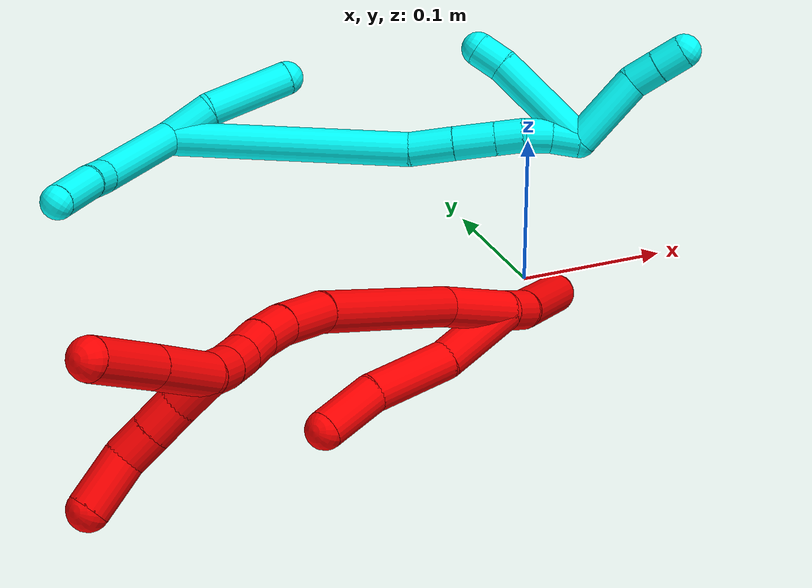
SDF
<sdf version="1.7">
 <world name="default">
  <model name="2">
   <static>0</static>
   <link name="2">
    <collision name="collision-cylinder-e_1_2_8">
     <pose>-0.016802 -0.004725 0.020211 0.229642 -0.680503 -0.081612</pose>
     <geometry><cylinder><radius>0.0125</radius><length>0.053408</length></cylinder></geometry>
     <surface>
      <friction><ode><mu>1.16</mu><mu2>1.16</mu2><slip1>0</slip1><slip2>0</slip2></ode></friction>
      <contact><ode><kp>1e+06</kp><kd>1</kd><max_vel>0</max_vel><min_depth>0.001</min_depth></ode></contact>
     </surface>
    </collision>
    <visual name="visual-cylinder-e_1_2_8">
     <pose>-0.016802 -0.004725 0.020211 0.229642 -0.680503 -0.081612</pose>
     <geometry><cylinder><radius>0.0125</radius><length>0.053408</length></cylinder></geometry>
     <material><ambient>1 0 0 1</ambient></material>
    </visual>
    <collision name="collision-cylinder-e_2_8_9">
     <pose>-0.048632 -0.008737 0.064012 -0.030161 -0.567038 0.008789</pose>
     <geometry><cylinder><radius>0.0125</radius><length>0.05596</length></cylinder></geometry>
     <surface>
      <friction><ode><mu>1.16</mu><mu2>1.16</mu2><slip1>0</slip1><slip2>0</slip2></ode></friction>
      <contact><ode><kp>1e+06</kp><kd>1</kd><max_vel>0</max_vel><min_depth>0.001</min_depth></ode></contact>
     </surface>
    </collision>
    <visual name="visual-cylinder-e_2_8_9">
     <pose>-0.048632 -0.008737 0.064012 -0.030161 -0.567038 0.008789</pose>
     <geometry><cylinder><radius>0.0125</radius><length>0.05596</length></cylinder></geometry>
     <material><ambient>1 0 0 1</ambient></material>
    </visual>
    <collision name="collision-cylinder-e_3_9_6">
     <pose>-0.074877 -0.011672 0.104145 0.216973 -0.584842 -0.065554</pose>
     <geometry><cylinder><radius>0.0125</radius><length>0.040633</length></cylinder></geometry>
     <surface>
      <friction><ode><mu>1.16</mu><mu2>1.16</mu2><slip1>0</slip1><slip2>0</slip2></ode></friction>
      <contact><ode><kp>1e+06</kp><kd>1</kd><max_vel>0</max_vel><min_depth>0.001</min_depth></ode></contact>
     </surface>
    </collision>
    <visual name="visual-cylinder-e_3_9_6">
     <pose>-0.074877 -0.011672 0.104145 0.216973 -0.584842 -0.065554</pose>
     <geometry><cylinder><radius>0.0125</radius><length>0.040633</length></cylinder></geometry>
     <material><ambient>1 0 0 1</ambient></material>
    </visual>
    <collision name="collision-cylinder-e_1_2_10">
     <pose>4.9e-05 -0.000212 -0.011595 3.12335 0.004239 0.45655</pose>
     <geometry><cylinder><radius>0.0125</radius><length>0.023193</length></cylinder></geometry>
     <surface>
      <friction><ode><mu>1.16</mu><mu2>1.16</mu2><slip1>0</slip1><slip2>0</slip2></ode></friction>
      <contact><ode><kp>1e+06</kp><kd>1</kd><max_vel>0</max_vel><min_depth>0.001</min_depth></ode></contact>
     </surface>
    </collision>
    <visual name="visual-cylinder-e_1_2_10">
     <pose>4.9e-05 -0.000212 -0.011595 3.12335 0.004239 0.45655</pose>
     <geometry><cylinder><radius>0.0125</radius><length>0.023193</length></cylinder></geometry>
     <material><ambient>1 0 0 1</ambient></material>
    </visual>
    <collision name="collision-cylinder-e_2_10_5">
     <pose>-0.003876 0.008106 -0.060422 -2.9164 -0.103662 0.860272</pose>
     <geometry><cylinder><radius>0.0125</radius><length>0.076807</length></cylinder></geometry>
     <surface>
      <friction><ode><mu>1.16</mu><mu2>1.16</mu2><slip1>0</slip1><slip2>0</slip2></ode></friction>
      <contact><ode><kp>1e+06</kp><kd>1</kd><max_vel>0</max_vel><min_depth>0.001</min_depth></ode></contact>
     </surface>
    </collision>
    <visual name="visual-cylinder-e_2_10_5">
     <pose>-0.003876 0.008106 -0.060422 -2.9164 -0.103662 0.860272</pose>
     <geometry><cylinder><radius>0.0125</radius><length>0.076807</length></cylinder></geometry>
     <material><ambient>1 0 0 1</ambient></material>
    </visual>
    <collision name="collision-cylinder-e_1_2_11">
     <pose>-0.004247 0.006381 0.025627 -0.244029 -0.159461 0.019595</pose>
     <geometry><cylinder><radius>0.0125</radius><length>0.053497</length></cylinder></geometry>
     <surface>
      <friction><ode><mu>1.16</mu><mu2>1.16</mu2><slip1>0</slip1><slip2>0</slip2></ode></friction>
      <contact><ode><kp>1e+06</kp><kd>1</kd><max_vel>0</max_vel><min_depth>0.001</min_depth></ode></contact>
     </surface>
    </collision>
    <visual name="visual-cylinder-e_1_2_11">
     <pose>-0.004247 0.006381 0.025627 -0.244029 -0.159461 0.019595</pose>
     <geometry><cylinder><radius>0.0125</radius><length>0.053497</length></cylinder></geometry>
     <material><ambient>1 0 0 1</ambient></material>
    </visual>
    <collision name="collision-cylinder-e_2_11_12">
     <pose>-0.01209 0.016583 0.111582 -0.063261 -0.059408 0.00188</pose>
     <geometry><cylinder><radius>0.0125</radius><length>0.121112</length></cylinder></geometry>
     <surface>
      <friction><ode><mu>1.16</mu><mu2>1.16</mu2><slip1>0</slip1><slip2>0</slip2></ode></friction>
      <contact><ode><kp>1e+06</kp><kd>1</kd><max_vel>0</max_vel><min_depth>0.001</min_depth></ode></contact>
     </surface>
    </collision>
    <visual name="visual-cylinder-e_2_11_12">
     <pose>-0.01209 0.016583 0.111582 -0.063261 -0.059408 0.00188</pose>
     <geometry><cylinder><radius>0.0125</radius><length>0.121112</length></cylinder></geometry>
     <material><ambient>1 0 0 1</ambient></material>
    </visual>
    <collision name="collision-cylinder-e_3_12_13">
     <pose>-0.018578 0.018919 0.190755 0.07866 -0.151855 -0.005987</pose>
     <geometry><cylinder><radius>0.0125</radius><length>0.038246</length></cylinder></geometry>
     <surface>
      <friction><ode><mu>1.16</mu><mu2>1.16</mu2><slip1>0</slip1><slip2>0</slip2></ode></friction>
      <contact><ode><kp>1e+06</kp><kd>1</kd><max_vel>0</max_vel><min_depth>0.001</min_depth></ode></contact>
     </surface>
    </collision>
    <visual name="visual-cylinder-e_3_12_13">
     <pose>-0.018578 0.018919 0.190755 0.07866 -0.151855 -0.005987</pose>
     <geometry><cylinder><radius>0.0125</radius><length>0.038246</length></cylinder></geometry>
     <material><ambient>1 0 0 1</ambient></material>
    </visual>
    <collision name="collision-cylinder-e_4_13_14">
     <pose>-0.02368 0.014688 0.221423 0.228147 -0.180038 -0.020682</pose>
     <geometry><cylinder><radius>0.0125</radius><length>0.024676</length></cylinder></geometry>
     <surface>
      <friction><ode><mu>1.16</mu><mu2>1.16</mu2><slip1>0</slip1><slip2>0</slip2></ode></friction>
      <contact><ode><kp>1e+06</kp><kd>1</kd><max_vel>0</max_vel><min_depth>0.001</min_depth></ode></contact>
     </surface>
    </collision>
    <visual name="visual-cylinder-e_4_13_14">
     <pose>-0.02368 0.014688 0.221423 0.228147 -0.180038 -0.020682</pose>
     <geometry><cylinder><radius>0.0125</radius><length>0.024676</length></cylinder></geometry>
     <material><ambient>1 0 0 1</ambient></material>
    </visual>
    <collision name="collision-cylinder-e_5_14_15">
     <pose>-0.027632 0.00823 0.243341 0.352475 -0.160596 -0.028659</pose>
     <geometry><cylinder><radius>0.0125</radius><length>0.02179</length></cylinder></geometry>
     <surface>
      <friction><ode><mu>1.16</mu><mu2>1.16</mu2><slip1>0</slip1><slip2>0</slip2></ode></friction>
      <contact><ode><kp>1e+06</kp><kd>1</kd><max_vel>0</max_vel><min_depth>0.001</min_depth></ode></contact>
     </surface>
    </collision>
    <visual name="visual-cylinder-e_5_14_15">
     <pose>-0.027632 0.00823 0.243341 0.352475 -0.160596 -0.028659</pose>
     <geometry><cylinder><radius>0.0125</radius><length>0.02179</length></cylinder></geometry>
     <material><ambient>1 0 0 1</ambient></material>
    </visual>
    <collision name="collision-cylinder-e_6_15_16">
     <pose>-0.029945 0.001494 0.26311 0.302842 -0.056324 -0.008597</pose>
     <geometry><cylinder><radius>0.0125</radius><length>0.020306</length></cylinder></geometry>
     <surface>
      <friction><ode><mu>1.16</mu><mu2>1.16</mu2><slip1>0</slip1><slip2>0</slip2></ode></friction>
      <contact><ode><kp>1e+06</kp><kd>1</kd><max_vel>0</max_vel><min_depth>0.001</min_depth></ode></contact>
     </surface>
    </collision>
    <visual name="visual-cylinder-e_6_15_16">
     <pose>-0.029945 0.001494 0.26311 0.302842 -0.056324 -0.008597</pose>
     <geometry><cylinder><radius>0.0125</radius><length>0.020306</length></cylinder></geometry>
     <material><ambient>1 0 0 1</ambient></material>
    </visual>
    <collision name="collision-cylinder-e_7_16_1">
     <pose>-0.030317 -0.003561 0.282765 0.200874 0.019613 0.001977</pose>
     <geometry><cylinder><radius>0.0125</radius><length>0.020373</length></cylinder></geometry>
     <surface>
      <friction><ode><mu>1.16</mu><mu2>1.16</mu2><slip1>0</slip1><slip2>0</slip2></ode></friction>
      <contact><ode><kp>1e+06</kp><kd>1</kd><max_vel>0</max_vel><min_depth>0.001</min_depth></ode></contact>
     </surface>
    </collision>
    <visual name="visual-cylinder-e_7_16_1">
     <pose>-0.030317 -0.003561 0.282765 0.200874 0.019613 0.001977</pose>
     <geometry><cylinder><radius>0.0125</radius><length>0.020373</length></cylinder></geometry>
     <material><ambient>1 0 0 1</ambient></material>
    </visual>
    <collision name="collision-cylinder-e_1_1_17">
     <pose>-0.028746 -0.002248 0.316438 -0.140233 0.057263 -0.004023</pose>
     <geometry><cylinder><radius>0.0125</radius><length>0.047934</length></cylinder></geometry>
     <surface>
      <friction><ode><mu>1.16</mu><mu2>1.16</mu2><slip1>0</slip1><slip2>0</slip2></ode></friction>
      <contact><ode><kp>1e+06</kp><kd>1</kd><max_vel>0</max_vel><min_depth>0.001</min_depth></ode></contact>
     </surface>
    </collision>
    <visual name="visual-cylinder-e_1_1_17">
     <pose>-0.028746 -0.002248 0.316438 -0.140233 0.057263 -0.004023</pose>
     <geometry><cylinder><radius>0.0125</radius><length>0.047934</length></cylinder></geometry>
     <material><ambient>1 0 0 1</ambient></material>
    </visual>
    <collision name="collision-cylinder-e_2_17_4">
     <pose>-0.025818 0.004266 0.365923 -0.122298 0.059794 -0.003662</pose>
     <geometry><cylinder><radius>0.0125</radius><length>0.052066</length></cylinder></geometry>
     <surface>
      <friction><ode><mu>1.16</mu><mu2>1.16</mu2><slip1>0</slip1><slip2>0</slip2></ode></friction>
      <contact><ode><kp>1e+06</kp><kd>1</kd><max_vel>0</max_vel><min_depth>0.001</min_depth></ode></contact>
     </surface>
    </collision>
    <visual name="visual-cylinder-e_2_17_4">
     <pose>-0.025818 0.004266 0.365923 -0.122298 0.059794 -0.003662</pose>
     <geometry><cylinder><radius>0.0125</radius><length>0.052066</length></cylinder></geometry>
     <material><ambient>1 0 0 1</ambient></material>
    </visual>
    <collision name="collision-cylinder-e_1_1_18">
     <pose>-0.041928 -0.00594 0.2944 0.206958 -1.42856 -0.179592</pose>
     <geometry><cylinder><radius>0.0125</radius><length>0.023863</length></cylinder></geometry>
     <surface>
      <friction><ode><mu>1.16</mu><mu2>1.16</mu2><slip1>0</slip1><slip2>0</slip2></ode></friction>
      <contact><ode><kp>1e+06</kp><kd>1</kd><max_vel>0</max_vel><min_depth>0.001</min_depth></ode></contact>
     </surface>
    </collision>
    <visual name="visual-cylinder-e_1_1_18">
     <pose>-0.041928 -0.00594 0.2944 0.206958 -1.42856 -0.179592</pose>
     <geometry><cylinder><radius>0.0125</radius><length>0.023863</length></cylinder></geometry>
     <material><ambient>1 0 0 1</ambient></material>
    </visual>
    <collision name="collision-cylinder-e_2_18_19">
     <pose>-0.064018 -0.007562 0.299152 0.390215 -1.25586 -0.284981</pose>
     <geometry><cylinder><radius>0.0125</radius><length>0.02162</length></cylinder></geometry>
     <surface>
      <friction><ode><mu>1.16</mu><mu2>1.16</mu2><slip1>0</slip1><slip2>0</slip2></ode></friction>
      <contact><ode><kp>1e+06</kp><kd>1</kd><max_vel>0</max_vel><min_depth>0.001</min_depth></ode></contact>
     </surface>
    </collision>
    <visual name="visual-cylinder-e_2_18_19">
     <pose>-0.064018 -0.007562 0.299152 0.390215 -1.25586 -0.284981</pose>
     <geometry><cylinder><radius>0.0125</radius><length>0.02162</length></cylinder></geometry>
     <material><ambient>1 0 0 1</ambient></material>
    </visual>
    <collision name="collision-cylinder-e_3_19_20">
     <pose>-0.083961 -0.010064 0.305485 0.362746 -1.22693 -0.256823</pose>
     <geometry><cylinder><radius>0.0125</radius><length>0.020531</length></cylinder></geometry>
     <surface>
      <friction><ode><mu>1.16</mu><mu2>1.16</mu2><slip1>0</slip1><slip2>0</slip2></ode></friction>
      <contact><ode><kp>1e+06</kp><kd>1</kd><max_vel>0</max_vel><min_depth>0.001</min_depth></ode></contact>
     </surface>
    </collision>
    <visual name="visual-cylinder-e_3_19_20">
     <pose>-0.083961 -0.010064 0.305485 0.362746 -1.22693 -0.256823</pose>
     <geometry><cylinder><radius>0.0125</radius><length>0.020531</length></cylinder></geometry>
     <material><ambient>1 0 0 1</ambient></material>
    </visual>
    <collision name="collision-cylinder-e_4_20_3">
     <pose>-0.10734 -0.017532 0.316577 0.671238 -0.939197 -0.350391</pose>
     <geometry><cylinder><radius>0.0125</radius><length>0.033986</length></cylinder></geometry>
     <surface>
      <friction><ode><mu>1.16</mu><mu2>1.16</mu2><slip1>0</slip1><slip2>0</slip2></ode></friction>
      <contact><ode><kp>1e+06</kp><kd>1</kd><max_vel>0</max_vel><min_depth>0.001</min_depth></ode></contact>
     </surface>
    </collision>
    <visual name="visual-cylinder-e_4_20_3">
     <pose>-0.10734 -0.017532 0.316577 0.671238 -0.939197 -0.350391</pose>
     <geometry><cylinder><radius>0.0125</radius><length>0.033986</length></cylinder></geometry>
     <material><ambient>1 0 0 1</ambient></material>
    </visual>
    <collision name="collision-sphere-3">
     <pose>-0.121055 -0.023772 0.324433 0 -0 0</pose>
     <geometry><sphere><radius>0.0125</radius></sphere></geometry>
     <surface>
      <friction><ode><mu>1.16</mu><mu2>1.16</mu2><slip1>0</slip1><slip2>0</slip2></ode></friction>
      <contact><ode><kp>1e+06</kp><kd>1</kd><max_vel>0</max_vel><min_depth>0.001</min_depth></ode></contact>
     </surface>
    </collision>
    <visual name="visual-sphere-3">
     <pose>-0.121055 -0.023772 0.324433 0 -0 0</pose>
     <geometry><sphere><radius>0.0125</radius></sphere></geometry>
     <material><ambient>1 0 0 1</ambient></material>
    </visual>
    <collision name="collision-sphere-20">
     <pose>-0.093626 -0.011292 0.30872 0 -0 0</pose>
     <geometry><sphere><radius>0.0125</radius></sphere></geometry>
     <surface>
      <friction><ode><mu>1.16</mu><mu2>1.16</mu2><slip1>0</slip1><slip2>0</slip2></ode></friction>
      <contact><ode><kp>1e+06</kp><kd>1</kd><max_vel>0</max_vel><min_depth>0.001</min_depth></ode></contact>
     </surface>
    </collision>
    <visual name="visual-sphere-20">
     <pose>-0.093626 -0.011292 0.30872 0 -0 0</pose>
     <geometry><sphere><radius>0.0125</radius></sphere></geometry>
     <material><ambient>1 0 0 1</ambient></material>
    </visual>
    <collision name="collision-sphere-19">
     <pose>-0.074296 -0.008836 0.302249 0 -0 0</pose>
     <geometry><sphere><radius>0.0125</radius></sphere></geometry>
     <surface>
      <friction><ode><mu>1.16</mu><mu2>1.16</mu2><slip1>0</slip1><slip2>0</slip2></ode></friction>
      <contact><ode><kp>1e+06</kp><kd>1</kd><max_vel>0</max_vel><min_depth>0.001</min_depth></ode></contact>
     </surface>
    </collision>
    <visual name="visual-sphere-19">
     <pose>-0.074296 -0.008836 0.302249 0 -0 0</pose>
     <geometry><sphere><radius>0.0125</radius></sphere></geometry>
     <material><ambient>1 0 0 1</ambient></material>
    </visual>
    <collision name="collision-sphere-5">
     <pose>-0.007849 0.016635 -0.097655 0 -0 0</pose>
     <geometry><sphere><radius>0.0125</radius></sphere></geometry>
     <surface>
      <friction><ode><mu>1.16</mu><mu2>1.16</mu2><slip1>0</slip1><slip2>0</slip2></ode></friction>
      <contact><ode><kp>1e+06</kp><kd>1</kd><max_vel>0</max_vel><min_depth>0.001</min_depth></ode></contact>
     </surface>
    </collision>
    <visual name="visual-sphere-5">
     <pose>-0.007849 0.016635 -0.097655 0 -0 0</pose>
     <geometry><sphere><radius>0.0125</radius></sphere></geometry>
     <material><ambient>1 0 0 1</ambient></material>
    </visual>
    <collision name="collision-sphere-10">
     <pose>9.8e-05 -0.000423 -0.023189 0 -0 0</pose>
     <geometry><sphere><radius>0.0125</radius></sphere></geometry>
     <surface>
      <friction><ode><mu>1.16</mu><mu2>1.16</mu2><slip1>0</slip1><slip2>0</slip2></ode></friction>
      <contact><ode><kp>1e+06</kp><kd>1</kd><max_vel>0</max_vel><min_depth>0.001</min_depth></ode></contact>
     </surface>
    </collision>
    <visual name="visual-sphere-10">
     <pose>9.8e-05 -0.000423 -0.023189 0 -0 0</pose>
     <geometry><sphere><radius>0.0125</radius></sphere></geometry>
     <material><ambient>1 0 0 1</ambient></material>
    </visual>
    <collision name="collision-sphere-6">
     <pose>-0.086093 -0.015319 0.120687 0 -0 0</pose>
     <geometry><sphere><radius>0.0125</radius></sphere></geometry>
     <surface>
      <friction><ode><mu>1.16</mu><mu2>1.16</mu2><slip1>0</slip1><slip2>0</slip2></ode></friction>
      <contact><ode><kp>1e+06</kp><kd>1</kd><max_vel>0</max_vel><min_depth>0.001</min_depth></ode></contact>
     </surface>
    </collision>
    <visual name="visual-sphere-6">
     <pose>-0.086093 -0.015319 0.120687 0 -0 0</pose>
     <geometry><sphere><radius>0.0125</radius></sphere></geometry>
     <material><ambient>1 0 0 1</ambient></material>
    </visual>
    <collision name="collision-sphere-9">
     <pose>-0.063661 -0.008026 0.087602 0 -0 0</pose>
     <geometry><sphere><radius>0.0125</radius></sphere></geometry>
     <surface>
      <friction><ode><mu>1.16</mu><mu2>1.16</mu2><slip1>0</slip1><slip2>0</slip2></ode></friction>
      <contact><ode><kp>1e+06</kp><kd>1</kd><max_vel>0</max_vel><min_depth>0.001</min_depth></ode></contact>
     </surface>
    </collision>
    <visual name="visual-sphere-9">
     <pose>-0.063661 -0.008026 0.087602 0 -0 0</pose>
     <geometry><sphere><radius>0.0125</radius></sphere></geometry>
     <material><ambient>1 0 0 1</ambient></material>
    </visual>
    <collision name="collision-sphere-2">
     <geometry><sphere><radius>0.0125</radius></sphere></geometry>
     <surface>
      <friction><ode><mu>1.16</mu><mu2>1.16</mu2><slip1>0</slip1><slip2>0</slip2></ode></friction>
      <contact><ode><kp>1e+06</kp><kd>1</kd><max_vel>0</max_vel><min_depth>0.001</min_depth></ode></contact>
     </surface>
    </collision>
    <visual name="visual-sphere-2">
     <geometry><sphere><radius>0.0125</radius></sphere></geometry>
     <material><ambient>1 0 0 1</ambient></material>
    </visual>
    <collision name="collision-sphere-8">
     <pose>-0.033603 -0.009449 0.040422 0 -0 0</pose>
     <geometry><sphere><radius>0.0125</radius></sphere></geometry>
     <surface>
      <friction><ode><mu>1.16</mu><mu2>1.16</mu2><slip1>0</slip1><slip2>0</slip2></ode></friction>
      <contact><ode><kp>1e+06</kp><kd>1</kd><max_vel>0</max_vel><min_depth>0.001</min_depth></ode></contact>
     </surface>
    </collision>
    <visual name="visual-sphere-8">
     <pose>-0.033603 -0.009449 0.040422 0 -0 0</pose>
     <geometry><sphere><radius>0.0125</radius></sphere></geometry>
     <material><ambient>1 0 0 1</ambient></material>
    </visual>
    <collision name="collision-sphere-11">
     <pose>-0.008495 0.012762 0.051253 0 -0 0</pose>
     <geometry><sphere><radius>0.0125</radius></sphere></geometry>
     <surface>
      <friction><ode><mu>1.16</mu><mu2>1.16</mu2><slip1>0</slip1><slip2>0</slip2></ode></friction>
      <contact><ode><kp>1e+06</kp><kd>1</kd><max_vel>0</max_vel><min_depth>0.001</min_depth></ode></contact>
     </surface>
    </collision>
    <visual name="visual-sphere-11">
     <pose>-0.008495 0.012762 0.051253 0 -0 0</pose>
     <geometry><sphere><radius>0.0125</radius></sphere></geometry>
     <material><ambient>1 0 0 1</ambient></material>
    </visual>
    <collision name="collision-sphere-12">
     <pose>-0.015685 0.020405 0.17191 0 -0 0</pose>
     <geometry><sphere><radius>0.0125</radius></sphere></geometry>
     <surface>
      <friction><ode><mu>1.16</mu><mu2>1.16</mu2><slip1>0</slip1><slip2>0</slip2></ode></friction>
      <contact><ode><kp>1e+06</kp><kd>1</kd><max_vel>0</max_vel><min_depth>0.001</min_depth></ode></contact>
     </surface>
    </collision>
    <visual name="visual-sphere-12">
     <pose>-0.015685 0.020405 0.17191 0 -0 0</pose>
     <geometry><sphere><radius>0.0125</radius></sphere></geometry>
     <material><ambient>1 0 0 1</ambient></material>
    </visual>
    <collision name="collision-sphere-13">
     <pose>-0.021471 0.017434 0.209599 0 -0 0</pose>
     <geometry><sphere><radius>0.0125</radius></sphere></geometry>
     <surface>
      <friction><ode><mu>1.16</mu><mu2>1.16</mu2><slip1>0</slip1><slip2>0</slip2></ode></friction>
      <contact><ode><kp>1e+06</kp><kd>1</kd><max_vel>0</max_vel><min_depth>0.001</min_depth></ode></contact>
     </surface>
    </collision>
    <visual name="visual-sphere-13">
     <pose>-0.021471 0.017434 0.209599 0 -0 0</pose>
     <geometry><sphere><radius>0.0125</radius></sphere></geometry>
     <material><ambient>1 0 0 1</ambient></material>
    </visual>
    <collision name="collision-sphere-14">
     <pose>-0.02589 0.011943 0.233247 0 -0 0</pose>
     <geometry><sphere><radius>0.0125</radius></sphere></geometry>
     <surface>
      <friction><ode><mu>1.16</mu><mu2>1.16</mu2><slip1>0</slip1><slip2>0</slip2></ode></friction>
      <contact><ode><kp>1e+06</kp><kd>1</kd><max_vel>0</max_vel><min_depth>0.001</min_depth></ode></contact>
     </surface>
    </collision>
    <visual name="visual-sphere-14">
     <pose>-0.02589 0.011943 0.233247 0 -0 0</pose>
     <geometry><sphere><radius>0.0125</radius></sphere></geometry>
     <material><ambient>1 0 0 1</ambient></material>
    </visual>
    <collision name="collision-sphere-15">
     <pose>-0.029374 0.004517 0.253434 0 -0 0</pose>
     <geometry><sphere><radius>0.0125</radius></sphere></geometry>
     <surface>
      <friction><ode><mu>1.16</mu><mu2>1.16</mu2><slip1>0</slip1><slip2>0</slip2></ode></friction>
      <contact><ode><kp>1e+06</kp><kd>1</kd><max_vel>0</max_vel><min_depth>0.001</min_depth></ode></contact>
     </surface>
    </collision>
    <visual name="visual-sphere-15">
     <pose>-0.029374 0.004517 0.253434 0 -0 0</pose>
     <geometry><sphere><radius>0.0125</radius></sphere></geometry>
     <material><ambient>1 0 0 1</ambient></material>
    </visual>
    <collision name="collision-sphere-16">
     <pose>-0.030517 -0.001529 0.272785 0 -0 0</pose>
     <geometry><sphere><radius>0.0125</radius></sphere></geometry>
     <surface>
      <friction><ode><mu>1.16</mu><mu2>1.16</mu2><slip1>0</slip1><slip2>0</slip2></ode></friction>
      <contact><ode><kp>1e+06</kp><kd>1</kd><max_vel>0</max_vel><min_depth>0.001</min_depth></ode></contact>
     </surface>
    </collision>
    <visual name="visual-sphere-16">
     <pose>-0.030517 -0.001529 0.272785 0 -0 0</pose>
     <geometry><sphere><radius>0.0125</radius></sphere></geometry>
     <material><ambient>1 0 0 1</ambient></material>
    </visual>
    <collision name="collision-sphere-1">
     <pose>-0.030117 -0.005593 0.292745 0 -0 0</pose>
     <geometry><sphere><radius>0.0125</radius></sphere></geometry>
     <surface>
      <friction><ode><mu>1.16</mu><mu2>1.16</mu2><slip1>0</slip1><slip2>0</slip2></ode></friction>
      <contact><ode><kp>1e+06</kp><kd>1</kd><max_vel>0</max_vel><min_depth>0.001</min_depth></ode></contact>
     </surface>
    </collision>
    <visual name="visual-sphere-1">
     <pose>-0.030117 -0.005593 0.292745 0 -0 0</pose>
     <geometry><sphere><radius>0.0125</radius></sphere></geometry>
     <material><ambient>1 0 0 1</ambient></material>
    </visual>
    <collision name="collision-sphere-18">
     <pose>-0.053739 -0.006288 0.296055 0 -0 0</pose>
     <geometry><sphere><radius>0.0125</radius></sphere></geometry>
     <surface>
      <friction><ode><mu>1.16</mu><mu2>1.16</mu2><slip1>0</slip1><slip2>0</slip2></ode></friction>
      <contact><ode><kp>1e+06</kp><kd>1</kd><max_vel>0</max_vel><min_depth>0.001</min_depth></ode></contact>
     </surface>
    </collision>
    <visual name="visual-sphere-18">
     <pose>-0.053739 -0.006288 0.296055 0 -0 0</pose>
     <geometry><sphere><radius>0.0125</radius></sphere></geometry>
     <material><ambient>1 0 0 1</ambient></material>
    </visual>
    <collision name="collision-sphere-17">
     <pose>-0.027374 0.001096 0.340131 0 -0 0</pose>
     <geometry><sphere><radius>0.0125</radius></sphere></geometry>
     <surface>
      <friction><ode><mu>1.16</mu><mu2>1.16</mu2><slip1>0</slip1><slip2>0</slip2></ode></friction>
      <contact><ode><kp>1e+06</kp><kd>1</kd><max_vel>0</max_vel><min_depth>0.001</min_depth></ode></contact>
     </surface>
    </collision>
    <visual name="visual-sphere-17">
     <pose>-0.027374 0.001096 0.340131 0 -0 0</pose>
     <geometry><sphere><radius>0.0125</radius></sphere></geometry>
     <material><ambient>1 0 0 1</ambient></material>
    </visual>
    <collision name="collision-sphere-4">
     <pose>-0.024263 0.007436 0.391715 0 -0 0</pose>
     <geometry><sphere><radius>0.0125</radius></sphere></geometry>
     <surface>
      <friction><ode><mu>1.16</mu><mu2>1.16</mu2><slip1>0</slip1><slip2>0</slip2></ode></friction>
      <contact><ode><kp>1e+06</kp><kd>1</kd><max_vel>0</max_vel><min_depth>0.001</min_depth></ode></contact>
     </surface>
    </collision>
    <visual name="visual-sphere-4">
     <pose>-0.024263 0.007436 0.391715 0 -0 0</pose>
     <geometry><sphere><radius>0.0125</radius></sphere></geometry>
     <material><ambient>1 0 0 1</ambient></material>
    </visual>
    <inertial>
     <pose>-0.029667 0.002642 0.15037 0 -0 0</pose>
     <mass>0.75</mass>
     <inertia>
      <ixx>0.000282</ixx>
      <ixy>0</ixy>
      <ixz>0</ixz>
      <iyy>0.000254</iyy>
      <iyz>0</iyz>
      <izz>6.4e-05</izz>
     </inertia>
    </inertial>
   </link>
   <pose>-0.064522 -0.103794 0.037457 0.99746 -0.865438 -0.541143</pose>
  </model>
  <model name="3">
   <static>0</static>
   <link name="3">
    <collision name="collision-cylinder-e_1_2_8">
     <pose>-0.024721 -0.034715 0.011019 1.26344 -0.596307 -0.442397</pose>
     <geometry><cylinder><radius>0.0125</radius><length>0.088039</length></cylinder></geometry>
     <surface>
      <friction><ode><mu>1.16</mu><mu2>1.16</mu2><slip1>0</slip1><slip2>0</slip2></ode></friction>
      <contact><ode><kp>1e+06</kp><kd>1</kd><max_vel>0</max_vel><min_depth>0.001</min_depth></ode></contact>
     </surface>
    </collision>
    <visual name="visual-cylinder-e_1_2_8">
     <pose>-0.024721 -0.034715 0.011019 1.26344 -0.596307 -0.442397</pose>
     <geometry><cylinder><radius>0.0125</radius><length>0.088039</length></cylinder></geometry>
     <material><ambient>0.003922 1 0.996078 1</ambient></material>
    </visual>
    <collision name="collision-cylinder-e_2_8_9">
     <pose>-0.053592 -0.078608 0.024461 1.31265 -0.412177 -0.319304</pose>
     <geometry><cylinder><radius>0.0125</radius><length>0.020718</length></cylinder></geometry>
     <surface>
      <friction><ode><mu>1.16</mu><mu2>1.16</mu2><slip1>0</slip1><slip2>0</slip2></ode></friction>
      <contact><ode><kp>1e+06</kp><kd>1</kd><max_vel>0</max_vel><min_depth>0.001</min_depth></ode></contact>
     </surface>
    </collision>
    <visual name="visual-cylinder-e_2_8_9">
     <pose>-0.053592 -0.078608 0.024461 1.31265 -0.412177 -0.319304</pose>
     <geometry><cylinder><radius>0.0125</radius><length>0.020718</length></cylinder></geometry>
     <material><ambient>0.003922 1 0.996078 1</ambient></material>
    </visual>
    <collision name="collision-cylinder-e_3_9_6">
     <pose>-0.06891 -0.10455 0.031294 1.31362 -0.572326 -0.446167</pose>
     <geometry><cylinder><radius>0.0125</radius><length>0.041243</length></cylinder></geometry>
     <surface>
      <friction><ode><mu>1.16</mu><mu2>1.16</mu2><slip1>0</slip1><slip2>0</slip2></ode></friction>
      <contact><ode><kp>1e+06</kp><kd>1</kd><max_vel>0</max_vel><min_depth>0.001</min_depth></ode></contact>
     </surface>
    </collision>
    <visual name="visual-cylinder-e_3_9_6">
     <pose>-0.06891 -0.10455 0.031294 1.31362 -0.572326 -0.446167</pose>
     <geometry><cylinder><radius>0.0125</radius><length>0.041243</length></cylinder></geometry>
     <material><ambient>0.003922 1 0.996078 1</ambient></material>
    </visual>
    <collision name="collision-cylinder-e_1_2_10">
     <pose>0.017068 0.001632 -0.00632 -2.88889 1.20552 -2.77653</pose>
     <geometry><cylinder><radius>0.0125</radius><length>0.036548</length></cylinder></geometry>
     <surface>
      <friction><ode><mu>1.16</mu><mu2>1.16</mu2><slip1>0</slip1><slip2>0</slip2></ode></friction>
      <contact><ode><kp>1e+06</kp><kd>1</kd><max_vel>0</max_vel><min_depth>0.001</min_depth></ode></contact>
     </surface>
    </collision>
    <visual name="visual-cylinder-e_1_2_10">
     <pose>0.017068 0.001632 -0.00632 -2.88889 1.20552 -2.77653</pose>
     <geometry><cylinder><radius>0.0125</radius><length>0.036548</length></cylinder></geometry>
     <material><ambient>0.003922 1 0.996078 1</ambient></material>
    </visual>
    <collision name="collision-cylinder-e_2_10_5">
     <pose>0.059891 0.011114 -0.029422 -2.70404 0.947208 -2.32296</pose>
     <geometry><cylinder><radius>0.0125</radius><length>0.063452</length></cylinder></geometry>
     <surface>
      <friction><ode><mu>1.16</mu><mu2>1.16</mu2><slip1>0</slip1><slip2>0</slip2></ode></friction>
      <contact><ode><kp>1e+06</kp><kd>1</kd><max_vel>0</max_vel><min_depth>0.001</min_depth></ode></contact>
     </surface>
    </collision>
    <visual name="visual-cylinder-e_2_10_5">
     <pose>0.059891 0.011114 -0.029422 -2.70404 0.947208 -2.32296</pose>
     <geometry><cylinder><radius>0.0125</radius><length>0.063452</length></cylinder></geometry>
     <material><ambient>0.003922 1 0.996078 1</ambient></material>
    </visual>
    <collision name="collision-cylinder-e_1_2_11">
     <pose>0.045441 -0.012595 -0.074277 2.97362 0.542746 2.55397</pose>
     <geometry><cylinder><radius>0.0125</radius><length>0.17596</length></cylinder></geometry>
     <surface>
      <friction><ode><mu>1.16</mu><mu2>1.16</mu2><slip1>0</slip1><slip2>0</slip2></ode></friction>
      <contact><ode><kp>1e+06</kp><kd>1</kd><max_vel>0</max_vel><min_depth>0.001</min_depth></ode></contact>
     </surface>
    </collision>
    <visual name="visual-cylinder-e_1_2_11">
     <pose>0.045441 -0.012595 -0.074277 2.97362 0.542746 2.55397</pose>
     <geometry><cylinder><radius>0.0125</radius><length>0.17596</length></cylinder></geometry>
     <material><ambient>0.003922 1 0.996078 1</ambient></material>
    </visual>
    <collision name="collision-cylinder-e_2_11_12">
     <pose>0.101495 -0.028 -0.160478 2.91021 0.713888 2.53741</pose>
     <geometry><cylinder><radius>0.0125</radius><length>0.032419</length></cylinder></geometry>
     <surface>
      <friction><ode><mu>1.16</mu><mu2>1.16</mu2><slip1>0</slip1><slip2>0</slip2></ode></friction>
      <contact><ode><kp>1e+06</kp><kd>1</kd><max_vel>0</max_vel><min_depth>0.001</min_depth></ode></contact>
     </surface>
    </collision>
    <visual name="visual-cylinder-e_2_11_12">
     <pose>0.101495 -0.028 -0.160478 2.91021 0.713888 2.53741</pose>
     <geometry><cylinder><radius>0.0125</radius><length>0.032419</length></cylinder></geometry>
     <material><ambient>0.003922 1 0.996078 1</ambient></material>
    </visual>
    <collision name="collision-cylinder-e_3_12_13">
     <pose>0.121914 -0.033046 -0.183728 2.94663 0.704129 2.62127</pose>
     <geometry><cylinder><radius>0.0125</radius><length>0.030292</length></cylinder></geometry>
     <surface>
      <friction><ode><mu>1.16</mu><mu2>1.16</mu2><slip1>0</slip1><slip2>0</slip2></ode></friction>
      <contact><ode><kp>1e+06</kp><kd>1</kd><max_vel>0</max_vel><min_depth>0.001</min_depth></ode></contact>
     </surface>
    </collision>
    <visual name="visual-cylinder-e_3_12_13">
     <pose>0.121914 -0.033046 -0.183728 2.94663 0.704129 2.62127</pose>
     <geometry><cylinder><radius>0.0125</radius><length>0.030292</length></cylinder></geometry>
     <material><ambient>0.003922 1 0.996078 1</ambient></material>
    </visual>
    <collision name="collision-cylinder-e_4_13_14">
     <pose>0.138268 -0.036785 -0.202596 2.94491 0.705346 2.6178</pose>
     <geometry><cylinder><radius>0.0125</radius><length>0.020203</length></cylinder></geometry>
     <surface>
      <friction><ode><mu>1.16</mu><mu2>1.16</mu2><slip1>0</slip1><slip2>0</slip2></ode></friction>
      <contact><ode><kp>1e+06</kp><kd>1</kd><max_vel>0</max_vel><min_depth>0.001</min_depth></ode></contact>
     </surface>
    </collision>
    <visual name="visual-cylinder-e_4_13_14">
     <pose>0.138268 -0.036785 -0.202596 2.94491 0.705346 2.6178</pose>
     <geometry><cylinder><radius>0.0125</radius><length>0.020203</length></cylinder></geometry>
     <material><ambient>0.003922 1 0.996078 1</ambient></material>
    </visual>
    <collision name="collision-cylinder-e_5_14_15">
     <pose>0.15027 -0.037502 -0.218587 -3.04879 0.571337 -2.82798</pose>
     <geometry><cylinder><radius>0.0125</radius><length>0.020172</length></cylinder></geometry>
     <surface>
      <friction><ode><mu>1.16</mu><mu2>1.16</mu2><slip1>0</slip1><slip2>0</slip2></ode></friction>
      <contact><ode><kp>1e+06</kp><kd>1</kd><max_vel>0</max_vel><min_depth>0.001</min_depth></ode></contact>
     </surface>
    </collision>
    <visual name="visual-cylinder-e_5_14_15">
     <pose>0.15027 -0.037502 -0.218587 -3.04879 0.571337 -2.82798</pose>
     <geometry><cylinder><radius>0.0125</radius><length>0.020172</length></cylinder></geometry>
     <material><ambient>0.003922 1 0.996078 1</ambient></material>
    </visual>
    <collision name="collision-cylinder-e_6_15_1">
     <pose>0.160174 -0.037276 -0.236503 3.08248 0.438609 2.87784</pose>
     <geometry><cylinder><radius>0.0125</radius><length>0.020954</length></cylinder></geometry>
     <surface>
      <friction><ode><mu>1.16</mu><mu2>1.16</mu2><slip1>0</slip1><slip2>0</slip2></ode></friction>
      <contact><ode><kp>1e+06</kp><kd>1</kd><max_vel>0</max_vel><min_depth>0.001</min_depth></ode></contact>
     </surface>
    </collision>
    <visual name="visual-cylinder-e_6_15_1">
     <pose>0.160174 -0.037276 -0.236503 3.08248 0.438609 2.87784</pose>
     <geometry><cylinder><radius>0.0125</radius><length>0.020954</length></cylinder></geometry>
     <material><ambient>0.003922 1 0.996078 1</ambient></material>
    </visual>
    <collision name="collision-cylinder-e_1_1_16">
     <pose>0.192604 -0.041283 -0.249729 2.39948 1.39056 2.2688</pose>
     <geometry><cylinder><radius>0.0125</radius><length>0.056884</length></cylinder></geometry>
     <surface>
      <friction><ode><mu>1.16</mu><mu2>1.16</mu2><slip1>0</slip1><slip2>0</slip2></ode></friction>
      <contact><ode><kp>1e+06</kp><kd>1</kd><max_vel>0</max_vel><min_depth>0.001</min_depth></ode></contact>
     </surface>
    </collision>
    <visual name="visual-cylinder-e_1_1_16">
     <pose>0.192604 -0.041283 -0.249729 2.39948 1.39056 2.2688</pose>
     <geometry><cylinder><radius>0.0125</radius><length>0.056884</length></cylinder></geometry>
     <material><ambient>0.003922 1 0.996078 1</ambient></material>
    </visual>
    <collision name="collision-cylinder-e_2_16_17">
     <pose>0.230001 -0.047943 -0.257669 2.48628 1.06019 2.09043</pose>
     <geometry><cylinder><radius>0.0125</radius><length>0.021584</length></cylinder></geometry>
     <surface>
      <friction><ode><mu>1.16</mu><mu2>1.16</mu2><slip1>0</slip1><slip2>0</slip2></ode></friction>
      <contact><ode><kp>1e+06</kp><kd>1</kd><max_vel>0</max_vel><min_depth>0.001</min_depth></ode></contact>
     </surface>
    </collision>
    <visual name="visual-cylinder-e_2_16_17">
     <pose>0.230001 -0.047943 -0.257669 2.48628 1.06019 2.09043</pose>
     <geometry><cylinder><radius>0.0125</radius><length>0.021584</length></cylinder></geometry>
     <material><ambient>0.003922 1 0.996078 1</ambient></material>
    </visual>
    <collision name="collision-cylinder-e_3_17_4">
     <pose>0.248866 -0.054095 -0.266091 2.53559 1.07107 2.17177</pose>
     <geometry><cylinder><radius>0.0125</radius><length>0.021532</length></cylinder></geometry>
     <surface>
      <friction><ode><mu>1.16</mu><mu2>1.16</mu2><slip1>0</slip1><slip2>0</slip2></ode></friction>
      <contact><ode><kp>1e+06</kp><kd>1</kd><max_vel>0</max_vel><min_depth>0.001</min_depth></ode></contact>
     </surface>
    </collision>
    <visual name="visual-cylinder-e_3_17_4">
     <pose>0.248866 -0.054095 -0.266091 2.53559 1.07107 2.17177</pose>
     <geometry><cylinder><radius>0.0125</radius><length>0.021532</length></cylinder></geometry>
     <material><ambient>0.003922 1 0.996078 1</ambient></material>
    </visual>
    <collision name="collision-cylinder-e_1_1_18">
     <pose>0.172101 -0.030127 -0.208463 -0.202734 0.192853 -0.019677</pose>
     <geometry><cylinder><radius>0.0125</radius><length>0.078032</length></cylinder></geometry>
     <surface>
      <friction><ode><mu>1.16</mu><mu2>1.16</mu2><slip1>0</slip1><slip2>0</slip2></ode></friction>
      <contact><ode><kp>1e+06</kp><kd>1</kd><max_vel>0</max_vel><min_depth>0.001</min_depth></ode></contact>
     </surface>
    </collision>
    <visual name="visual-cylinder-e_1_1_18">
     <pose>0.172101 -0.030127 -0.208463 -0.202734 0.192853 -0.019677</pose>
     <geometry><cylinder><radius>0.0125</radius><length>0.078032</length></cylinder></geometry>
     <material><ambient>0.003922 1 0.996078 1</ambient></material>
    </visual>
    <collision name="collision-cylinder-e_2_18_3">
     <pose>0.179775 -0.020228 -0.160192 -0.200603 0.017809 -0.001792</pose>
     <geometry><cylinder><radius>0.0125</radius><length>0.021968</length></cylinder></geometry>
     <surface>
      <friction><ode><mu>1.16</mu><mu2>1.16</mu2><slip1>0</slip1><slip2>0</slip2></ode></friction>
      <contact><ode><kp>1e+06</kp><kd>1</kd><max_vel>0</max_vel><min_depth>0.001</min_depth></ode></contact>
     </surface>
    </collision>
    <visual name="visual-cylinder-e_2_18_3">
     <pose>0.179775 -0.020228 -0.160192 -0.200603 0.017809 -0.001792</pose>
     <geometry><cylinder><radius>0.0125</radius><length>0.021968</length></cylinder></geometry>
     <material><ambient>0.003922 1 0.996078 1</ambient></material>
    </visual>
    <collision name="collision-sphere-3">
     <pose>0.17997 -0.01804 -0.149431 0 -0 0</pose>
     <geometry><sphere><radius>0.0125</radius></sphere></geometry>
     <surface>
      <friction><ode><mu>1.16</mu><mu2>1.16</mu2><slip1>0</slip1><slip2>0</slip2></ode></friction>
      <contact><ode><kp>1e+06</kp><kd>1</kd><max_vel>0</max_vel><min_depth>0.001</min_depth></ode></contact>
     </surface>
    </collision>
    <visual name="visual-sphere-3">
     <pose>0.17997 -0.01804 -0.149431 0 -0 0</pose>
     <geometry><sphere><radius>0.0125</radius></sphere></geometry>
     <material><ambient>0.003922 1 0.996078 1</ambient></material>
    </visual>
    <collision name="collision-sphere-5">
     <pose>0.085646 0.018964 -0.046203 0 -0 0</pose>
     <geometry><sphere><radius>0.0125</radius></sphere></geometry>
     <surface>
      <friction><ode><mu>1.16</mu><mu2>1.16</mu2><slip1>0</slip1><slip2>0</slip2></ode></friction>
      <contact><ode><kp>1e+06</kp><kd>1</kd><max_vel>0</max_vel><min_depth>0.001</min_depth></ode></contact>
     </surface>
    </collision>
    <visual name="visual-sphere-5">
     <pose>0.085646 0.018964 -0.046203 0 -0 0</pose>
     <geometry><sphere><radius>0.0125</radius></sphere></geometry>
     <material><ambient>0.003922 1 0.996078 1</ambient></material>
    </visual>
    <collision name="collision-sphere-10">
     <pose>0.034137 0.003264 -0.01264 0 -0 0</pose>
     <geometry><sphere><radius>0.0125</radius></sphere></geometry>
     <surface>
      <friction><ode><mu>1.16</mu><mu2>1.16</mu2><slip1>0</slip1><slip2>0</slip2></ode></friction>
      <contact><ode><kp>1e+06</kp><kd>1</kd><max_vel>0</max_vel><min_depth>0.001</min_depth></ode></contact>
     </surface>
    </collision>
    <visual name="visual-sphere-10">
     <pose>0.034137 0.003264 -0.01264 0 -0 0</pose>
     <geometry><sphere><radius>0.0125</radius></sphere></geometry>
     <material><ambient>0.003922 1 0.996078 1</ambient></material>
    </visual>
    <collision name="collision-sphere-6">
     <pose>-0.080078 -0.121315 0.035703 0 -0 0</pose>
     <geometry><sphere><radius>0.0125</radius></sphere></geometry>
     <surface>
      <friction><ode><mu>1.16</mu><mu2>1.16</mu2><slip1>0</slip1><slip2>0</slip2></ode></friction>
      <contact><ode><kp>1e+06</kp><kd>1</kd><max_vel>0</max_vel><min_depth>0.001</min_depth></ode></contact>
     </surface>
    </collision>
    <visual name="visual-sphere-6">
     <pose>-0.080078 -0.121315 0.035703 0 -0 0</pose>
     <geometry><sphere><radius>0.0125</radius></sphere></geometry>
     <material><ambient>0.003922 1 0.996078 1</ambient></material>
    </visual>
    <collision name="collision-sphere-9">
     <pose>-0.057741 -0.087785 0.026884 0 -0 0</pose>
     <geometry><sphere><radius>0.0125</radius></sphere></geometry>
     <surface>
      <friction><ode><mu>1.16</mu><mu2>1.16</mu2><slip1>0</slip1><slip2>0</slip2></ode></friction>
      <contact><ode><kp>1e+06</kp><kd>1</kd><max_vel>0</max_vel><min_depth>0.001</min_depth></ode></contact>
     </surface>
    </collision>
    <visual name="visual-sphere-9">
     <pose>-0.057741 -0.087785 0.026884 0 -0 0</pose>
     <geometry><sphere><radius>0.0125</radius></sphere></geometry>
     <material><ambient>0.003922 1 0.996078 1</ambient></material>
    </visual>
    <collision name="collision-sphere-2">
     <geometry><sphere><radius>0.0125</radius></sphere></geometry>
     <surface>
      <friction><ode><mu>1.16</mu><mu2>1.16</mu2><slip1>0</slip1><slip2>0</slip2></ode></friction>
      <contact><ode><kp>1e+06</kp><kd>1</kd><max_vel>0</max_vel><min_depth>0.001</min_depth></ode></contact>
     </surface>
    </collision>
    <visual name="visual-sphere-2">
     <geometry><sphere><radius>0.0125</radius></sphere></geometry>
     <material><ambient>0.003922 1 0.996078 1</ambient></material>
    </visual>
    <collision name="collision-sphere-8">
     <pose>-0.049442 -0.069431 0.022038 0 -0 0</pose>
     <geometry><sphere><radius>0.0125</radius></sphere></geometry>
     <surface>
      <friction><ode><mu>1.16</mu><mu2>1.16</mu2><slip1>0</slip1><slip2>0</slip2></ode></friction>
      <contact><ode><kp>1e+06</kp><kd>1</kd><max_vel>0</max_vel><min_depth>0.001</min_depth></ode></contact>
     </surface>
    </collision>
    <visual name="visual-sphere-8">
     <pose>-0.049442 -0.069431 0.022038 0 -0 0</pose>
     <geometry><sphere><radius>0.0125</radius></sphere></geometry>
     <material><ambient>0.003922 1 0.996078 1</ambient></material>
    </visual>
    <collision name="collision-sphere-11">
     <pose>0.090882 -0.02519 -0.148553 0 -0 0</pose>
     <geometry><sphere><radius>0.0125</radius></sphere></geometry>
     <surface>
      <friction><ode><mu>1.16</mu><mu2>1.16</mu2><slip1>0</slip1><slip2>0</slip2></ode></friction>
      <contact><ode><kp>1e+06</kp><kd>1</kd><max_vel>0</max_vel><min_depth>0.001</min_depth></ode></contact>
     </surface>
    </collision>
    <visual name="visual-sphere-11">
     <pose>0.090882 -0.02519 -0.148553 0 -0 0</pose>
     <geometry><sphere><radius>0.0125</radius></sphere></geometry>
     <material><ambient>0.003922 1 0.996078 1</ambient></material>
    </visual>
    <collision name="collision-sphere-12">
     <pose>0.112109 -0.03081 -0.172403 0 -0 0</pose>
     <geometry><sphere><radius>0.0125</radius></sphere></geometry>
     <surface>
      <friction><ode><mu>1.16</mu><mu2>1.16</mu2><slip1>0</slip1><slip2>0</slip2></ode></friction>
      <contact><ode><kp>1e+06</kp><kd>1</kd><max_vel>0</max_vel><min_depth>0.001</min_depth></ode></contact>
     </surface>
    </collision>
    <visual name="visual-sphere-12">
     <pose>0.112109 -0.03081 -0.172403 0 -0 0</pose>
     <geometry><sphere><radius>0.0125</radius></sphere></geometry>
     <material><ambient>0.003922 1 0.996078 1</ambient></material>
    </visual>
    <collision name="collision-sphere-13">
     <pose>0.131719 -0.035282 -0.195053 0 -0 0</pose>
     <geometry><sphere><radius>0.0125</radius></sphere></geometry>
     <surface>
      <friction><ode><mu>1.16</mu><mu2>1.16</mu2><slip1>0</slip1><slip2>0</slip2></ode></friction>
      <contact><ode><kp>1e+06</kp><kd>1</kd><max_vel>0</max_vel><min_depth>0.001</min_depth></ode></contact>
     </surface>
    </collision>
    <visual name="visual-sphere-13">
     <pose>0.131719 -0.035282 -0.195053 0 -0 0</pose>
     <geometry><sphere><radius>0.0125</radius></sphere></geometry>
     <material><ambient>0.003922 1 0.996078 1</ambient></material>
    </visual>
    <collision name="collision-sphere-14">
     <pose>0.144816 -0.038288 -0.210139 0 -0 0</pose>
     <geometry><sphere><radius>0.0125</radius></sphere></geometry>
     <surface>
      <friction><ode><mu>1.16</mu><mu2>1.16</mu2><slip1>0</slip1><slip2>0</slip2></ode></friction>
      <contact><ode><kp>1e+06</kp><kd>1</kd><max_vel>0</max_vel><min_depth>0.001</min_depth></ode></contact>
     </surface>
    </collision>
    <visual name="visual-sphere-14">
     <pose>0.144816 -0.038288 -0.210139 0 -0 0</pose>
     <geometry><sphere><radius>0.0125</radius></sphere></geometry>
     <material><ambient>0.003922 1 0.996078 1</ambient></material>
    </visual>
    <collision name="collision-sphere-15">
     <pose>0.155724 -0.036716 -0.227034 0 -0 0</pose>
     <geometry><sphere><radius>0.0125</radius></sphere></geometry>
     <surface>
      <friction><ode><mu>1.16</mu><mu2>1.16</mu2><slip1>0</slip1><slip2>0</slip2></ode></friction>
      <contact><ode><kp>1e+06</kp><kd>1</kd><max_vel>0</max_vel><min_depth>0.001</min_depth></ode></contact>
     </surface>
    </collision>
    <visual name="visual-sphere-15">
     <pose>0.155724 -0.036716 -0.227034 0 -0 0</pose>
     <geometry><sphere><radius>0.0125</radius></sphere></geometry>
     <material><ambient>0.003922 1 0.996078 1</ambient></material>
    </visual>
    <collision name="collision-sphere-1">
     <pose>0.164623 -0.037837 -0.245972 0 -0 0</pose>
     <geometry><sphere><radius>0.0125</radius></sphere></geometry>
     <surface>
      <friction><ode><mu>1.16</mu><mu2>1.16</mu2><slip1>0</slip1><slip2>0</slip2></ode></friction>
      <contact><ode><kp>1e+06</kp><kd>1</kd><max_vel>0</max_vel><min_depth>0.001</min_depth></ode></contact>
     </surface>
    </collision>
    <visual name="visual-sphere-1">
     <pose>0.164623 -0.037837 -0.245972 0 -0 0</pose>
     <geometry><sphere><radius>0.0125</radius></sphere></geometry>
     <material><ambient>0.003922 1 0.996078 1</ambient></material>
    </visual>
    <collision name="collision-sphere-18">
     <pose>0.179579 -0.022416 -0.170954 0 -0 0</pose>
     <geometry><sphere><radius>0.0125</radius></sphere></geometry>
     <surface>
      <friction><ode><mu>1.16</mu><mu2>1.16</mu2><slip1>0</slip1><slip2>0</slip2></ode></friction>
      <contact><ode><kp>1e+06</kp><kd>1</kd><max_vel>0</max_vel><min_depth>0.001</min_depth></ode></contact>
     </surface>
    </collision>
    <visual name="visual-sphere-18">
     <pose>0.179579 -0.022416 -0.170954 0 -0 0</pose>
     <geometry><sphere><radius>0.0125</radius></sphere></geometry>
     <material><ambient>0.003922 1 0.996078 1</ambient></material>
    </visual>
    <collision name="collision-sphere-16">
     <pose>0.220585 -0.044728 -0.253487 0 -0 0</pose>
     <geometry><sphere><radius>0.0125</radius></sphere></geometry>
     <surface>
      <friction><ode><mu>1.16</mu><mu2>1.16</mu2><slip1>0</slip1><slip2>0</slip2></ode></friction>
      <contact><ode><kp>1e+06</kp><kd>1</kd><max_vel>0</max_vel><min_depth>0.001</min_depth></ode></contact>
     </surface>
    </collision>
    <visual name="visual-sphere-16">
     <pose>0.220585 -0.044728 -0.253487 0 -0 0</pose>
     <geometry><sphere><radius>0.0125</radius></sphere></geometry>
     <material><ambient>0.003922 1 0.996078 1</ambient></material>
    </visual>
    <collision name="collision-sphere-17">
     <pose>0.239417 -0.051157 -0.261851 0 -0 0</pose>
     <geometry><sphere><radius>0.0125</radius></sphere></geometry>
     <surface>
      <friction><ode><mu>1.16</mu><mu2>1.16</mu2><slip1>0</slip1><slip2>0</slip2></ode></friction>
      <contact><ode><kp>1e+06</kp><kd>1</kd><max_vel>0</max_vel><min_depth>0.001</min_depth></ode></contact>
     </surface>
    </collision>
    <visual name="visual-sphere-17">
     <pose>0.239417 -0.051157 -0.261851 0 -0 0</pose>
     <geometry><sphere><radius>0.0125</radius></sphere></geometry>
     <material><ambient>0.003922 1 0.996078 1</ambient></material>
    </visual>
    <collision name="collision-sphere-4">
     <pose>0.258316 -0.057034 -0.270331 0 -0 0</pose>
     <geometry><sphere><radius>0.0125</radius></sphere></geometry>
     <surface>
      <friction><ode><mu>1.16</mu><mu2>1.16</mu2><slip1>0</slip1><slip2>0</slip2></ode></friction>
      <contact><ode><kp>1e+06</kp><kd>1</kd><max_vel>0</max_vel><min_depth>0.001</min_depth></ode></contact>
     </surface>
    </collision>
    <visual name="visual-sphere-4">
     <pose>0.258316 -0.057034 -0.270331 0 -0 0</pose>
     <geometry><sphere><radius>0.0125</radius></sphere></geometry>
     <material><ambient>0.003922 1 0.996078 1</ambient></material>
    </visual>
    <inertial>
     <pose>0.081484 -0.029308 -0.109211 0 -0 0</pose>
     <mass>0.75</mass>
     <inertia>
      <ixx>-4.4e-05</ixx>
      <ixy>0</ixy>
      <ixz>0</ixz>
      <iyy>0.000715</iyy>
      <iyz>0</iyz>
      <izz>-0.000164</izz>
     </inertia>
    </inertial>
   </link>
   <pose>-0.152051 0.283287 0.013517 -0.666175 -0.827957 0.194331</pose>
  </model>
 </world>
</sdf>
